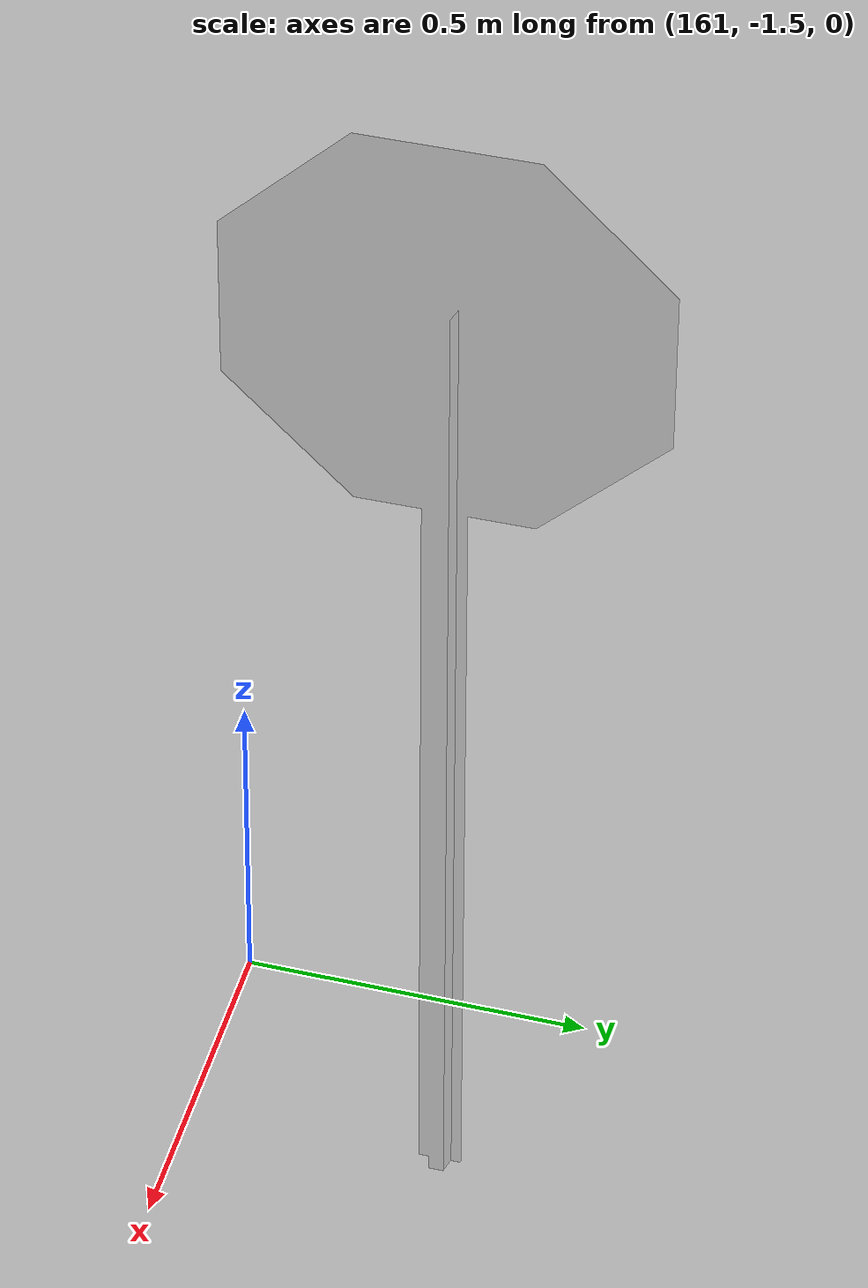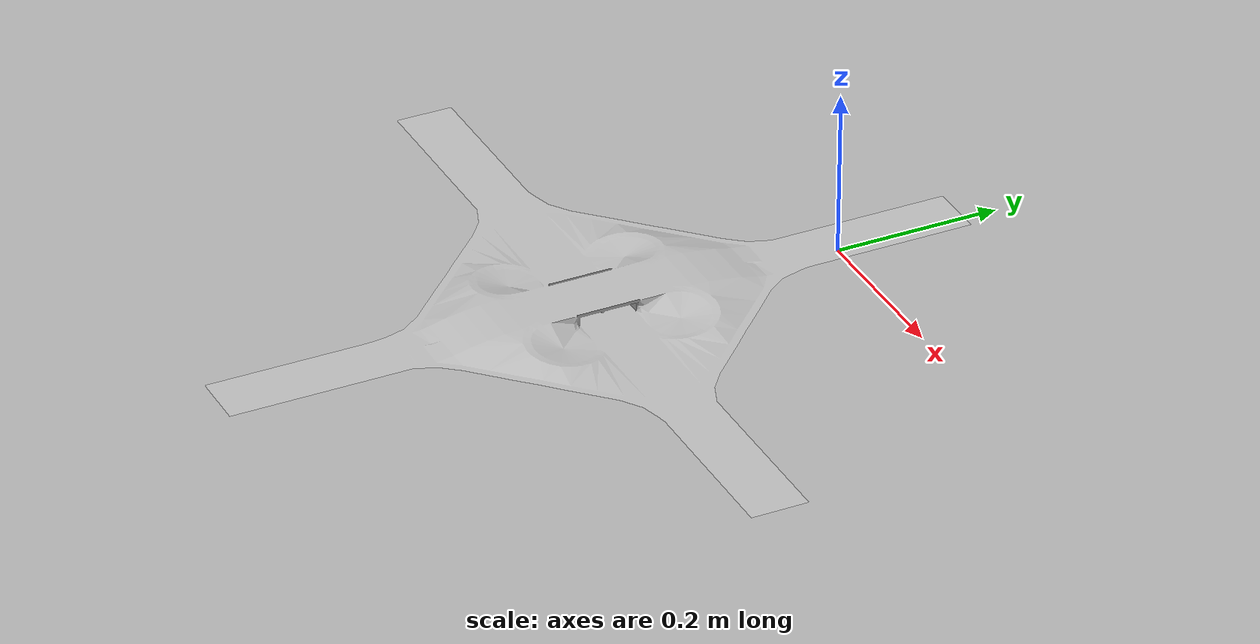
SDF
<sdf version="1.6">
 <world name="default">
  <light name="sun" type="directional">
   <pose>0 0 10 0 -0 0</pose>
   <diffuse>0.8 0.8 0.8 1</diffuse>
   <specular>0.2 0.2 0.2 1</specular>
   <attenuation>
    <range>1000</range>
    <constant>0.9</constant>
    <linear>0.01</linear>
    <quadratic>0.001</quadratic>
   </attenuation>
   <direction>-0.5 0.1 -0.9</direction>
  </light>
  <gravity>0 0 -9.8</gravity>
  <magnetic_field>6e-06 2.3e-05 -4.2e-05</magnetic_field>
  <atmosphere type="adiabatic"/>
  <physics name="default_physics" default="0" type="ode">
   <max_step_size>0.001</max_step_size>
   <real_time_factor>1</real_time_factor>
   <real_time_update_rate>1000</real_time_update_rate>
  </physics>
  <scene><ambient>0.4 0.4 0.4 1</ambient><background>0.7 0.7 0.7 1</background><shadows>1</shadows></scene>
  <spherical_coordinates>
   <surface_model>EARTH_WGS84</surface_model>
   <latitude_deg>0</latitude_deg>
   <longitude_deg>0</longitude_deg>
   <elevation>0</elevation>
   <heading_deg>0</heading_deg>
  </spherical_coordinates>
  <model name="cloverleaf_interchange">
   <static>1</static>
   <link name="link">
    <collision name="collision">
     <geometry>
      <mesh>
       <uri>model://cloverleaf_interchange/meshes/cloverleaf.obj</uri>
       <scale>0.0254 0.0254 0.0254</scale>
      </mesh>
     </geometry>
    </collision>
    <visual name="visual">
     <geometry>
      <mesh>
       <uri>model://cloverleaf_interchange/meshes/cloverleaf.obj</uri>
       <scale>0.0254 0.0254 0.0254</scale>
      </mesh>
     </geometry>
    </visual>
   </link>
  </model>
  <model name="Stop Sign">
   <static>1</static>
   <link name="link">
    <collision name="collision">
     <geometry><mesh><uri>model://stop_sign/meshes/stop_sign.dae</uri></mesh></geometry>
    </collision>
    <visual name="visual">
     <geometry><mesh><uri>model://stop_sign/meshes/stop_sign.dae</uri></mesh></geometry>
     <material>
      <script>
       <uri>model://stop_sign/materials/scripts</uri>
       <uri>model://stop_sign/materials/textures</uri>
       <name>StopSign/Diffuse</name>
      </script>
     </material>
    </visual>
   </link>
   <pose>161.244 -1.15135 -0.073822 0 0 -1.56168</pose>
  </model>
 </world>
</sdf>
